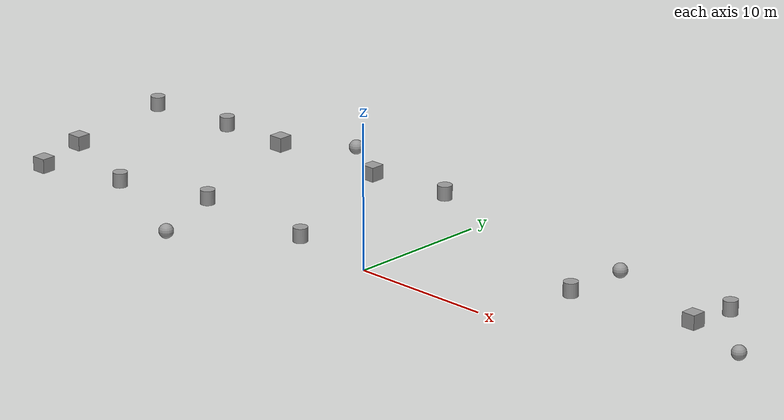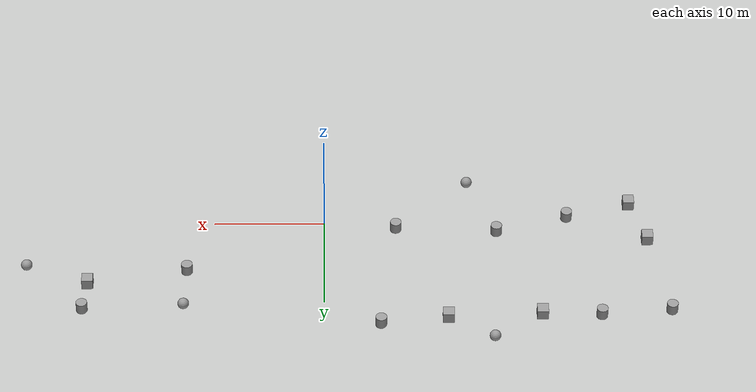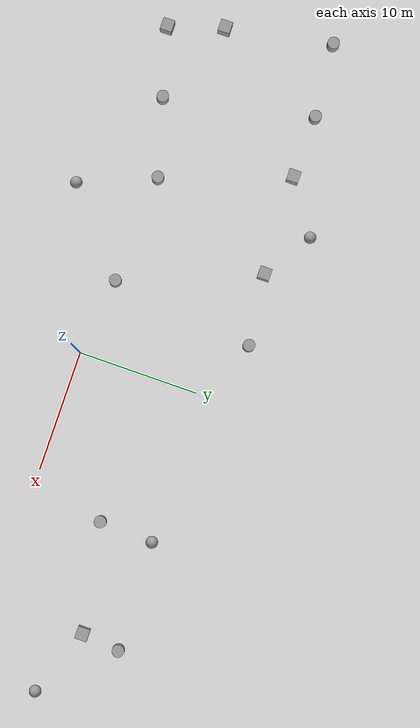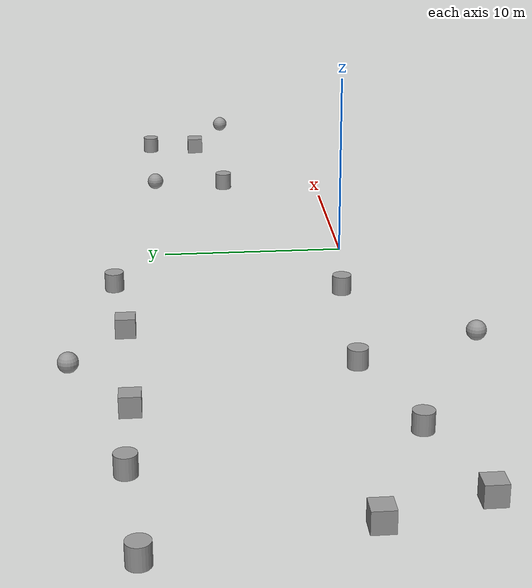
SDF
<?xml version='1.0'?>
<sdf version='1.7'>
  <model name='Untitled.world'>
    <link name='link_0'>
      <inertial>
        <mass>1</mass>
        <inertia>
          <ixx>0.145833</ixx>
          <ixy>0</ixy>
          <ixz>0</ixz>
          <iyy>0.145833</iyy>
          <iyz>0</iyz>
          <izz>0.125</izz>
        </inertia>
      </inertial>
      <pose>-30.8222 11.2468 0.5 0 -0 0</pose>
      <visual name='visual'>
        <pose>0 0 0 0 -0 0</pose>
        <geometry>
          <cylinder>
            <radius>0.5</radius>
            <length>1</length>
          </cylinder>
        </geometry>
        <material>
          <lighting>1</lighting>
          <script>
            <uri>file://media/materials/scripts/gazebo.material</uri>
            <name>Gazebo/Grey</name>
          </script>
          <shader type='pixel'/>
        </material>
        <transparency>0</transparency>
        <cast_shadows>1</cast_shadows>
      </visual>
      <collision name='collision'>
        <laser_retro>0</laser_retro>
        <max_contacts>10</max_contacts>
        <pose>0 0 0 0 -0 0</pose>
        <geometry>
          <cylinder>
            <radius>0.5</radius>
            <length>1</length>
          </cylinder>
        </geometry>
        <surface>
          <friction>
            <ode>
              <mu>1</mu>
              <mu2>1</mu2>
              <fdir1>0 0 0</fdir1>
              <slip1>0</slip1>
              <slip2>0</slip2>
            </ode>
            <torsional>
              <coefficient>1</coefficient>
              <patch_radius>0</patch_radius>
              <surface_radius>0</surface_radius>
              <use_patch_radius>1</use_patch_radius>
              <ode>
                <slip>0</slip>
              </ode>
            </torsional>
          </friction>
          <bounce>
            <restitution_coefficient>0</restitution_coefficient>
            <threshold>1e+06</threshold>
          </bounce>
          <contact>
            <collide_without_contact>0</collide_without_contact>
            <collide_without_contact_bitmask>1</collide_without_contact_bitmask>
            <collide_bitmask>1</collide_bitmask>
            <ode>
              <soft_cfm>0</soft_cfm>
              <soft_erp>0.2</soft_erp>
              <kp>1e+13</kp>
              <kd>1</kd>
              <max_vel>0.01</max_vel>
              <min_depth>0</min_depth>
            </ode>
            <bullet>
              <split_impulse>1</split_impulse>
              <split_impulse_penetration_threshold>-0.01</split_impulse_penetration_threshold>
              <soft_cfm>0</soft_cfm>
              <soft_erp>0.2</soft_erp>
              <kp>1e+13</kp>
              <kd>1</kd>
            </bullet>
          </contact>
        </surface>
      </collision>
    </link>
    <link name='link_10'>
      <inertial>
        <mass>1</mass>
        <inertia>
          <ixx>0.166667</ixx>
          <ixy>0</ixy>
          <ixz>0</ixz>
          <iyy>0.166667</iyy>
          <iyz>0</iyz>
          <izz>0.166667</izz>
        </inertia>
      </inertial>
      <pose>-29.2284 2.3885 0.5 0 -0 0</pose>
      <visual name='visual'>
        <pose>0 0 0 0 -0 0</pose>
        <geometry>
          <box>
            <size>1 1 1</size>
          </box>
        </geometry>
        <material>
          <lighting>1</lighting>
          <script>
            <uri>file://media/materials/scripts/gazebo.material</uri>
            <name>Gazebo/Grey</name>
          </script>
          <shader type='pixel'/>
        </material>
        <transparency>0</transparency>
        <cast_shadows>1</cast_shadows>
      </visual>
      <collision name='collision'>
        <laser_retro>0</laser_retro>
        <max_contacts>10</max_contacts>
        <pose>0 0 0 0 -0 0</pose>
        <geometry>
          <box>
            <size>1 1 1</size>
          </box>
        </geometry>
        <surface>
          <friction>
            <ode>
              <mu>1</mu>
              <mu2>1</mu2>
              <fdir1>0 0 0</fdir1>
              <slip1>0</slip1>
              <slip2>0</slip2>
            </ode>
            <torsional>
              <coefficient>1</coefficient>
              <patch_radius>0</patch_radius>
              <surface_radius>0</surface_radius>
              <use_patch_radius>1</use_patch_radius>
              <ode>
                <slip>0</slip>
              </ode>
            </torsional>
          </friction>
          <bounce>
            <restitution_coefficient>0</restitution_coefficient>
            <threshold>1e+06</threshold>
          </bounce>
          <contact>
            <collide_without_contact>0</collide_without_contact>
            <collide_without_contact_bitmask>1</collide_without_contact_bitmask>
            <collide_bitmask>1</collide_bitmask>
            <ode>
              <soft_cfm>0</soft_cfm>
              <soft_erp>0.2</soft_erp>
              <kp>1e+13</kp>
              <kd>1</kd>
              <max_vel>0.01</max_vel>
              <min_depth>0</min_depth>
            </ode>
            <bullet>
              <split_impulse>1</split_impulse>
              <split_impulse_penetration_threshold>-0.01</split_impulse_penetration_threshold>
              <soft_cfm>0</soft_cfm>
              <soft_erp>0.2</soft_erp>
              <kp>1e+13</kp>
              <kd>1</kd>
            </bullet>
          </contact>
        </surface>
      </collision>
    </link>
    <link name='link_11'>
      <inertial>
        <mass>1</mass>
        <inertia>
          <ixx>0.166667</ixx>
          <ixy>0</ixy>
          <ixz>0</ixz>
          <iyy>0.166667</iyy>
          <iyz>0</iyz>
          <izz>0.166667</izz>
        </inertia>
      </inertial>
      <pose>-19.3083 11.7055 0.5 0 -0 0</pose>
      <visual name='visual'>
        <pose>0 0 0 0 -0 0</pose>
        <geometry>
          <box>
            <size>1 1 1</size>
          </box>
        </geometry>
        <material>
          <lighting>1</lighting>
          <script>
            <uri>file://media/materials/scripts/gazebo.material</uri>
            <name>Gazebo/Grey</name>
          </script>
          <shader type='pixel'/>
        </material>
        <transparency>0</transparency>
        <cast_shadows>1</cast_shadows>
      </visual>
      <collision name='collision'>
        <laser_retro>0</laser_retro>
        <max_contacts>10</max_contacts>
        <pose>0 0 0 0 -0 0</pose>
        <geometry>
          <box>
            <size>1 1 1</size>
          </box>
        </geometry>
        <surface>
          <friction>
            <ode>
              <mu>1</mu>
              <mu2>1</mu2>
              <fdir1>0 0 0</fdir1>
              <slip1>0</slip1>
              <slip2>0</slip2>
            </ode>
            <torsional>
              <coefficient>1</coefficient>
              <patch_radius>0</patch_radius>
              <surface_radius>0</surface_radius>
              <use_patch_radius>1</use_patch_radius>
              <ode>
                <slip>0</slip>
              </ode>
            </torsional>
          </friction>
          <bounce>
            <restitution_coefficient>0</restitution_coefficient>
            <threshold>1e+06</threshold>
          </bounce>
          <contact>
            <collide_without_contact>0</collide_without_contact>
            <collide_without_contact_bitmask>1</collide_without_contact_bitmask>
            <collide_bitmask>1</collide_bitmask>
            <ode>
              <soft_cfm>0</soft_cfm>
              <soft_erp>0.2</soft_erp>
              <kp>1e+13</kp>
              <kd>1</kd>
              <max_vel>0.01</max_vel>
              <min_depth>0</min_depth>
            </ode>
            <bullet>
              <split_impulse>1</split_impulse>
              <split_impulse_penetration_threshold>-0.01</split_impulse_penetration_threshold>
              <soft_cfm>0</soft_cfm>
              <soft_erp>0.2</soft_erp>
              <kp>1e+13</kp>
              <kd>1</kd>
            </bullet>
          </contact>
        </surface>
      </collision>
    </link>
    <link name='link_12'>
      <inertial>
        <mass>1</mass>
        <inertia>
          <ixx>0.145833</ixx>
          <ixy>0</ixy>
          <ixz>0</ixz>
          <iyy>0.145833</iyy>
          <iyz>0</iyz>
          <izz>0.125</izz>
        </inertia>
      </inertial>
      <pose>-22.0556 -0.56703 0.5 0 -0 0</pose>
      <visual name='visual'>
        <pose>0 0 0 0 -0 0</pose>
        <geometry>
          <cylinder>
            <radius>0.5</radius>
            <length>1</length>
          </cylinder>
        </geometry>
        <material>
          <lighting>1</lighting>
          <script>
            <uri>file://media/materials/scripts/gazebo.material</uri>
            <name>Gazebo/Grey</name>
          </script>
          <shader type='pixel'/>
        </material>
        <transparency>0</transparency>
        <cast_shadows>1</cast_shadows>
      </visual>
      <collision name='collision'>
        <laser_retro>0</laser_retro>
        <max_contacts>10</max_contacts>
        <pose>0 0 0 0 -0 0</pose>
        <geometry>
          <cylinder>
            <radius>0.5</radius>
            <length>1</length>
          </cylinder>
        </geometry>
        <surface>
          <friction>
            <ode>
              <mu>1</mu>
              <mu2>1</mu2>
              <fdir1>0 0 0</fdir1>
              <slip1>0</slip1>
              <slip2>0</slip2>
            </ode>
            <torsional>
              <coefficient>1</coefficient>
              <patch_radius>0</patch_radius>
              <surface_radius>0</surface_radius>
              <use_patch_radius>1</use_patch_radius>
              <ode>
                <slip>0</slip>
              </ode>
            </torsional>
          </friction>
          <bounce>
            <restitution_coefficient>0</restitution_coefficient>
            <threshold>1e+06</threshold>
          </bounce>
          <contact>
            <collide_without_contact>0</collide_without_contact>
            <collide_without_contact_bitmask>1</collide_without_contact_bitmask>
            <collide_bitmask>1</collide_bitmask>
            <ode>
              <soft_cfm>0</soft_cfm>
              <soft_erp>0.2</soft_erp>
              <kp>1e+13</kp>
              <kd>1</kd>
              <max_vel>0.01</max_vel>
              <min_depth>0</min_depth>
            </ode>
            <bullet>
              <split_impulse>1</split_impulse>
              <split_impulse_penetration_threshold>-0.01</split_impulse_penetration_threshold>
              <soft_cfm>0</soft_cfm>
              <soft_erp>0.2</soft_erp>
              <kp>1e+13</kp>
              <kd>1</kd>
            </bullet>
          </contact>
        </surface>
      </collision>
    </link>
    <link name='link_13'>
      <inertial>
        <mass>1</mass>
        <inertia>
          <ixx>0.145833</ixx>
          <ixy>0</ixy>
          <ixz>0</ixz>
          <iyy>0.145833</iyy>
          <iyz>0</iyz>
          <izz>0.125</izz>
        </inertia>
      </inertial>
      <pose>-24.5776 11.8035 0.5 0 -0 0</pose>
      <visual name='visual'>
        <pose>0 0 0 0 -0 0</pose>
        <geometry>
          <cylinder>
            <radius>0.5</radius>
            <length>1</length>
          </cylinder>
        </geometry>
        <material>
          <lighting>1</lighting>
          <script>
            <uri>file://media/materials/scripts/gazebo.material</uri>
            <name>Gazebo/Grey</name>
          </script>
          <shader type='pixel'/>
        </material>
        <transparency>0</transparency>
        <cast_shadows>1</cast_shadows>
      </visual>
      <collision name='collision'>
        <laser_retro>0</laser_retro>
        <max_contacts>10</max_contacts>
        <pose>0 0 0 0 -0 0</pose>
        <geometry>
          <cylinder>
            <radius>0.5</radius>
            <length>1</length>
          </cylinder>
        </geometry>
        <surface>
          <friction>
            <ode>
              <mu>1</mu>
              <mu2>1</mu2>
              <fdir1>0 0 0</fdir1>
              <slip1>0</slip1>
              <slip2>0</slip2>
            </ode>
            <torsional>
              <coefficient>1</coefficient>
              <patch_radius>0</patch_radius>
              <surface_radius>0</surface_radius>
              <use_patch_radius>1</use_patch_radius>
              <ode>
                <slip>0</slip>
              </ode>
            </torsional>
          </friction>
          <bounce>
            <restitution_coefficient>0</restitution_coefficient>
            <threshold>1e+06</threshold>
          </bounce>
          <contact>
            <collide_without_contact>0</collide_without_contact>
            <collide_without_contact_bitmask>1</collide_without_contact_bitmask>
            <collide_bitmask>1</collide_bitmask>
            <ode>
              <soft_cfm>0</soft_cfm>
              <soft_erp>0.2</soft_erp>
              <kp>1e+13</kp>
              <kd>1</kd>
              <max_vel>0.01</max_vel>
              <min_depth>0</min_depth>
            </ode>
            <bullet>
              <split_impulse>1</split_impulse>
              <split_impulse_penetration_threshold>-0.01</split_impulse_penetration_threshold>
              <soft_cfm>0</soft_cfm>
              <soft_erp>0.2</soft_erp>
              <kp>1e+13</kp>
              <kd>1</kd>
            </bullet>
          </contact>
        </surface>
      </collision>
    </link>
    <link name='link_14'>
      <inertial>
        <mass>1</mass>
        <inertia>
          <ixx>0.145833</ixx>
          <ixy>0</ixy>
          <ixz>0</ixz>
          <iyy>0.145833</iyy>
          <iyz>0</iyz>
          <izz>0.125</izz>
        </inertia>
      </inertial>
      <pose>-15.6078 1.25382 0.5 0 -0 0</pose>
      <visual name='visual'>
        <pose>0 0 0 0 -0 0</pose>
        <geometry>
          <cylinder>
            <radius>0.5</radius>
            <length>1</length>
          </cylinder>
        </geometry>
        <material>
          <lighting>1</lighting>
          <script>
            <uri>file://media/materials/scripts/gazebo.material</uri>
            <name>Gazebo/Grey</name>
          </script>
          <shader type='pixel'/>
        </material>
        <transparency>0</transparency>
        <cast_shadows>1</cast_shadows>
      </visual>
      <collision name='collision'>
        <laser_retro>0</laser_retro>
        <max_contacts>10</max_contacts>
        <pose>0 0 0 0 -0 0</pose>
        <geometry>
          <cylinder>
            <radius>0.5</radius>
            <length>1</length>
          </cylinder>
        </geometry>
        <surface>
          <friction>
            <ode>
              <mu>1</mu>
              <mu2>1</mu2>
              <fdir1>0 0 0</fdir1>
              <slip1>0</slip1>
              <slip2>0</slip2>
            </ode>
            <torsional>
              <coefficient>1</coefficient>
              <patch_radius>0</patch_radius>
              <surface_radius>0</surface_radius>
              <use_patch_radius>1</use_patch_radius>
              <ode>
                <slip>0</slip>
              </ode>
            </torsional>
          </friction>
          <bounce>
            <restitution_coefficient>0</restitution_coefficient>
            <threshold>1e+06</threshold>
          </bounce>
          <contact>
            <collide_without_contact>0</collide_without_contact>
            <collide_without_contact_bitmask>1</collide_without_contact_bitmask>
            <collide_bitmask>1</collide_bitmask>
            <ode>
              <soft_cfm>0</soft_cfm>
              <soft_erp>0.2</soft_erp>
              <kp>1e+13</kp>
              <kd>1</kd>
              <max_vel>0.01</max_vel>
              <min_depth>0</min_depth>
            </ode>
            <bullet>
              <split_impulse>1</split_impulse>
              <split_impulse_penetration_threshold>-0.01</split_impulse_penetration_threshold>
              <soft_cfm>0</soft_cfm>
              <soft_erp>0.2</soft_erp>
              <kp>1e+13</kp>
              <kd>1</kd>
            </bullet>
          </contact>
        </surface>
      </collision>
    </link>
    <link name='link_15'>
      <inertial>
        <mass>1</mass>
        <inertia>
          <ixx>0.1</ixx>
          <ixy>0</ixy>
          <ixz>0</ixz>
          <iyy>0.1</iyy>
          <iyz>0</iyz>
          <izz>0.1</izz>
        </inertia>
      </inertial>
      <pose>-15.0012 14.6132 0.5 0 -0 0</pose>
      <visual name='visual'>
        <pose>0 0 0 0 -0 0</pose>
        <geometry>
          <sphere>
            <radius>0.5</radius>
          </sphere>
        </geometry>
        <material>
          <lighting>1</lighting>
          <script>
            <uri>file://media/materials/scripts/gazebo.material</uri>
            <name>Gazebo/Grey</name>
          </script>
          <shader type='pixel'/>
        </material>
        <transparency>0</transparency>
        <cast_shadows>1</cast_shadows>
      </visual>
      <collision name='collision'>
        <laser_retro>0</laser_retro>
        <max_contacts>10</max_contacts>
        <pose>0 0 0 0 -0 0</pose>
        <geometry>
          <sphere>
            <radius>0.5</radius>
          </sphere>
        </geometry>
        <surface>
          <friction>
            <ode>
              <mu>1</mu>
              <mu2>1</mu2>
              <fdir1>0 0 0</fdir1>
              <slip1>0</slip1>
              <slip2>0</slip2>
            </ode>
            <torsional>
              <coefficient>1</coefficient>
              <patch_radius>0</patch_radius>
              <surface_radius>0</surface_radius>
              <use_patch_radius>1</use_patch_radius>
              <ode>
                <slip>0</slip>
              </ode>
            </torsional>
          </friction>
          <bounce>
            <restitution_coefficient>0</restitution_coefficient>
            <threshold>1e+06</threshold>
          </bounce>
          <contact>
            <collide_without_contact>0</collide_without_contact>
            <collide_without_contact_bitmask>1</collide_without_contact_bitmask>
            <collide_bitmask>1</collide_bitmask>
            <ode>
              <soft_cfm>0</soft_cfm>
              <soft_erp>0.2</soft_erp>
              <kp>1e+13</kp>
              <kd>1</kd>
              <max_vel>0.01</max_vel>
              <min_depth>0</min_depth>
            </ode>
            <bullet>
              <split_impulse>1</split_impulse>
              <split_impulse_penetration_threshold>-0.01</split_impulse_penetration_threshold>
              <soft_cfm>0</soft_cfm>
              <soft_erp>0.2</soft_erp>
              <kp>1e+13</kp>
              <kd>1</kd>
            </bullet>
          </contact>
        </surface>
      </collision>
    </link>
    <link name='link_16'>
      <inertial>
        <mass>1</mass>
        <inertia>
          <ixx>0.166667</ixx>
          <ixy>0</ixy>
          <ixz>0</ixz>
          <iyy>0.166667</iyy>
          <iyz>0</iyz>
          <izz>0.166667</izz>
        </inertia>
      </inertial>
      <pose>-10.9734 12.0567 0.5 0 -0 0</pose>
      <visual name='visual'>
        <pose>0 0 0 0 -0 0</pose>
        <geometry>
          <box>
            <size>1 1 1</size>
          </box>
        </geometry>
        <material>
          <lighting>1</lighting>
          <script>
            <uri>file://media/materials/scripts/gazebo.material</uri>
            <name>Gazebo/Grey</name>
          </script>
          <shader type='pixel'/>
        </material>
        <transparency>0</transparency>
        <cast_shadows>1</cast_shadows>
      </visual>
      <collision name='collision'>
        <laser_retro>0</laser_retro>
        <max_contacts>10</max_contacts>
        <pose>0 0 0 0 -0 0</pose>
        <geometry>
          <box>
            <size>1 1 1</size>
          </box>
        </geometry>
        <surface>
          <friction>
            <ode>
              <mu>1</mu>
              <mu2>1</mu2>
              <fdir1>0 0 0</fdir1>
              <slip1>0</slip1>
              <slip2>0</slip2>
            </ode>
            <torsional>
              <coefficient>1</coefficient>
              <patch_radius>0</patch_radius>
              <surface_radius>0</surface_radius>
              <use_patch_radius>1</use_patch_radius>
              <ode>
                <slip>0</slip>
              </ode>
            </torsional>
          </friction>
          <bounce>
            <restitution_coefficient>0</restitution_coefficient>
            <threshold>1e+06</threshold>
          </bounce>
          <contact>
            <collide_without_contact>0</collide_without_contact>
            <collide_without_contact_bitmask>1</collide_without_contact_bitmask>
            <collide_bitmask>1</collide_bitmask>
            <ode>
              <soft_cfm>0</soft_cfm>
              <soft_erp>0.2</soft_erp>
              <kp>1e+13</kp>
              <kd>1</kd>
              <max_vel>0.01</max_vel>
              <min_depth>0</min_depth>
            </ode>
            <bullet>
              <split_impulse>1</split_impulse>
              <split_impulse_penetration_threshold>-0.01</split_impulse_penetration_threshold>
              <soft_cfm>0</soft_cfm>
              <soft_erp>0.2</soft_erp>
              <kp>1e+13</kp>
              <kd>1</kd>
            </bullet>
          </contact>
        </surface>
      </collision>
    </link>
    <link name='link_17'>
      <inertial>
        <mass>1</mass>
        <inertia>
          <ixx>0.145833</ixx>
          <ixy>0</ixy>
          <ixz>0</ixz>
          <iyy>0.145833</iyy>
          <iyz>0</iyz>
          <izz>0.125</izz>
        </inertia>
      </inertial>
      <pose>-6.48222 0.763266 0.5 0 -0 0</pose>
      <visual name='visual'>
        <pose>0 0 0 0 -0 0</pose>
        <geometry>
          <cylinder>
            <radius>0.5</radius>
            <length>1</length>
          </cylinder>
        </geometry>
        <material>
          <lighting>1</lighting>
          <script>
            <uri>file://media/materials/scripts/gazebo.material</uri>
            <name>Gazebo/Grey</name>
          </script>
          <shader type='pixel'/>
        </material>
        <transparency>0</transparency>
        <cast_shadows>1</cast_shadows>
      </visual>
      <collision name='collision'>
        <laser_retro>0</laser_retro>
        <max_contacts>10</max_contacts>
        <pose>0 0 0 0 -0 0</pose>
        <geometry>
          <cylinder>
            <radius>0.5</radius>
            <length>1</length>
          </cylinder>
        </geometry>
        <surface>
          <friction>
            <ode>
              <mu>1</mu>
              <mu2>1</mu2>
              <fdir1>0 0 0</fdir1>
              <slip1>0</slip1>
              <slip2>0</slip2>
            </ode>
            <torsional>
              <coefficient>1</coefficient>
              <patch_radius>0</patch_radius>
              <surface_radius>0</surface_radius>
              <use_patch_radius>1</use_patch_radius>
              <ode>
                <slip>0</slip>
              </ode>
            </torsional>
          </friction>
          <bounce>
            <restitution_coefficient>0</restitution_coefficient>
            <threshold>1e+06</threshold>
          </bounce>
          <contact>
            <collide_without_contact>0</collide_without_contact>
            <collide_without_contact_bitmask>1</collide_without_contact_bitmask>
            <collide_bitmask>1</collide_bitmask>
            <ode>
              <soft_cfm>0</soft_cfm>
              <soft_erp>0.2</soft_erp>
              <kp>1e+13</kp>
              <kd>1</kd>
              <max_vel>0.01</max_vel>
              <min_depth>0</min_depth>
            </ode>
            <bullet>
              <split_impulse>1</split_impulse>
              <split_impulse_penetration_threshold>-0.01</split_impulse_penetration_threshold>
              <soft_cfm>0</soft_cfm>
              <soft_erp>0.2</soft_erp>
              <kp>1e+13</kp>
              <kd>1</kd>
            </bullet>
          </contact>
        </surface>
      </collision>
    </link>
    <link name='link_18'>
      <inertial>
        <mass>1</mass>
        <inertia>
          <ixx>0.145833</ixx>
          <ixy>0</ixy>
          <ixz>0</ixz>
          <iyy>0.145833</iyy>
          <iyz>0</iyz>
          <izz>0.125</izz>
        </inertia>
      </inertial>
      <pose>-5.0022 12.7484 0.5 0 -0 0</pose>
      <visual name='visual'>
        <pose>0 0 0 0 -0 0</pose>
        <geometry>
          <cylinder>
            <radius>0.5</radius>
            <length>1</length>
          </cylinder>
        </geometry>
        <material>
          <lighting>1</lighting>
          <script>
            <uri>file://media/materials/scripts/gazebo.material</uri>
            <name>Gazebo/Grey</name>
          </script>
          <shader type='pixel'/>
        </material>
        <transparency>0</transparency>
        <cast_shadows>1</cast_shadows>
      </visual>
      <collision name='collision'>
        <laser_retro>0</laser_retro>
        <max_contacts>10</max_contacts>
        <pose>0 0 0 0 -0 0</pose>
        <geometry>
          <cylinder>
            <radius>0.5</radius>
            <length>1</length>
          </cylinder>
        </geometry>
        <surface>
          <friction>
            <ode>
              <mu>1</mu>
              <mu2>1</mu2>
              <fdir1>0 0 0</fdir1>
              <slip1>0</slip1>
              <slip2>0</slip2>
            </ode>
            <torsional>
              <coefficient>1</coefficient>
              <patch_radius>0</patch_radius>
              <surface_radius>0</surface_radius>
              <use_patch_radius>1</use_patch_radius>
              <ode>
                <slip>0</slip>
              </ode>
            </torsional>
          </friction>
          <bounce>
            <restitution_coefficient>0</restitution_coefficient>
            <threshold>1e+06</threshold>
          </bounce>
          <contact>
            <collide_without_contact>0</collide_without_contact>
            <collide_without_contact_bitmask>1</collide_without_contact_bitmask>
            <collide_bitmask>1</collide_bitmask>
            <ode>
              <soft_cfm>0</soft_cfm>
              <soft_erp>0.2</soft_erp>
              <kp>1e+13</kp>
              <kd>1</kd>
              <max_vel>0.01</max_vel>
              <min_depth>0</min_depth>
            </ode>
            <bullet>
              <split_impulse>1</split_impulse>
              <split_impulse_penetration_threshold>-0.01</split_impulse_penetration_threshold>
              <soft_cfm>0</soft_cfm>
              <soft_erp>0.2</soft_erp>
              <kp>1e+13</kp>
              <kd>1</kd>
            </bullet>
          </contact>
        </surface>
      </collision>
    </link>
    <link name='link_19'>
      <inertial>
        <mass>1</mass>
        <inertia>
          <ixx>0.1</ixx>
          <ixy>0</ixy>
          <ixz>0</ixz>
          <iyy>0.1</iyy>
          <iyz>0</iyz>
          <izz>0.1</izz>
        </inertia>
      </inertial>
      <pose>-13.0755 -4.93228 0.5 0 -0 0</pose>
      <visual name='visual'>
        <pose>0 0 0 0 -0 0</pose>
        <geometry>
          <sphere>
            <radius>0.5</radius>
          </sphere>
        </geometry>
        <material>
          <lighting>1</lighting>
          <script>
            <uri>file://media/materials/scripts/gazebo.material</uri>
            <name>Gazebo/Grey</name>
          </script>
          <shader type='pixel'/>
        </material>
        <transparency>0</transparency>
        <cast_shadows>1</cast_shadows>
      </visual>
      <collision name='collision'>
        <laser_retro>0</laser_retro>
        <max_contacts>10</max_contacts>
        <pose>0 0 0 0 -0 0</pose>
        <geometry>
          <sphere>
            <radius>0.5</radius>
          </sphere>
        </geometry>
        <surface>
          <friction>
            <ode>
              <mu>1</mu>
              <mu2>1</mu2>
              <fdir1>0 0 0</fdir1>
              <slip1>0</slip1>
              <slip2>0</slip2>
            </ode>
            <torsional>
              <coefficient>1</coefficient>
              <patch_radius>0</patch_radius>
              <surface_radius>0</surface_radius>
              <use_patch_radius>1</use_patch_radius>
              <ode>
                <slip>0</slip>
              </ode>
            </torsional>
          </friction>
          <bounce>
            <restitution_coefficient>0</restitution_coefficient>
            <threshold>1e+06</threshold>
          </bounce>
          <contact>
            <collide_without_contact>0</collide_without_contact>
            <collide_without_contact_bitmask>1</collide_without_contact_bitmask>
            <collide_bitmask>1</collide_bitmask>
            <ode>
              <soft_cfm>0</soft_cfm>
              <soft_erp>0.2</soft_erp>
              <kp>1e+13</kp>
              <kd>1</kd>
              <max_vel>0.01</max_vel>
              <min_depth>0</min_depth>
            </ode>
            <bullet>
              <split_impulse>1</split_impulse>
              <split_impulse_penetration_threshold>-0.01</split_impulse_penetration_threshold>
              <soft_cfm>0</soft_cfm>
              <soft_erp>0.2</soft_erp>
              <kp>1e+13</kp>
              <kd>1</kd>
            </bullet>
          </contact>
        </surface>
      </collision>
    </link>
    <link name='link_20'>
      <inertial>
        <mass>1</mass>
        <inertia>
          <ixx>0.166667</ixx>
          <ixy>0</ixy>
          <ixz>0</ixz>
          <iyy>0.166667</iyy>
          <iyz>0</iyz>
          <izz>0.166667</izz>
        </inertia>
      </inertial>
      <pose>-27.8066 -2.14153 0.5 0 -0 0</pose>
      <visual name='visual'>
        <pose>0 0 0 0 -0 0</pose>
        <geometry>
          <box>
            <size>1 1 1</size>
          </box>
        </geometry>
        <material>
          <lighting>1</lighting>
          <script>
            <uri>file://media/materials/scripts/gazebo.material</uri>
            <name>Gazebo/Grey</name>
          </script>
          <shader type='pixel'/>
        </material>
        <transparency>0</transparency>
        <cast_shadows>1</cast_shadows>
      </visual>
      <collision name='collision'>
        <laser_retro>0</laser_retro>
        <max_contacts>10</max_contacts>
        <pose>0 0 0 0 -0 0</pose>
        <geometry>
          <box>
            <size>1 1 1</size>
          </box>
        </geometry>
        <surface>
          <friction>
            <ode>
              <mu>1</mu>
              <mu2>1</mu2>
              <fdir1>0 0 0</fdir1>
              <slip1>0</slip1>
              <slip2>0</slip2>
            </ode>
            <torsional>
              <coefficient>1</coefficient>
              <patch_radius>0</patch_radius>
              <surface_radius>0</surface_radius>
              <use_patch_radius>1</use_patch_radius>
              <ode>
                <slip>0</slip>
              </ode>
            </torsional>
          </friction>
          <bounce>
            <restitution_coefficient>0</restitution_coefficient>
            <threshold>1e+06</threshold>
          </bounce>
          <contact>
            <collide_without_contact>0</collide_without_contact>
            <collide_without_contact_bitmask>1</collide_without_contact_bitmask>
            <collide_bitmask>1</collide_bitmask>
            <ode>
              <soft_cfm>0</soft_cfm>
              <soft_erp>0.2</soft_erp>
              <kp>1e+13</kp>
              <kd>1</kd>
              <max_vel>0.01</max_vel>
              <min_depth>0</min_depth>
            </ode>
            <bullet>
              <split_impulse>1</split_impulse>
              <split_impulse_penetration_threshold>-0.01</split_impulse_penetration_threshold>
              <soft_cfm>0</soft_cfm>
              <soft_erp>0.2</soft_erp>
              <kp>1e+13</kp>
              <kd>1</kd>
            </bullet>
          </contact>
        </surface>
      </collision>
    </link>
    <link name='link_5'>
      <inertial>
        <mass>1</mass>
        <inertia>
          <ixx>0.145833</ixx>
          <ixy>0</ixy>
          <ixz>0</ixz>
          <iyy>0.145833</iyy>
          <iyz>0</iyz>
          <izz>0.125</izz>
        </inertia>
      </inertial>
      <pose>12.3377 6.06515 0.5 0 -0 0</pose>
      <visual name='visual'>
        <pose>0 0 0 0 -0 0</pose>
        <geometry>
          <cylinder>
            <radius>0.5</radius>
            <length>1</length>
          </cylinder>
        </geometry>
        <material>
          <lighting>1</lighting>
          <script>
            <uri>file://media/materials/scripts/gazebo.material</uri>
            <name>Gazebo/Grey</name>
          </script>
          <shader type='pixel'/>
        </material>
        <transparency>0</transparency>
        <cast_shadows>1</cast_shadows>
      </visual>
      <collision name='collision'>
        <laser_retro>0</laser_retro>
        <max_contacts>10</max_contacts>
        <pose>0 0 0 0 -0 0</pose>
        <geometry>
          <cylinder>
            <radius>0.5</radius>
            <length>1</length>
          </cylinder>
        </geometry>
        <surface>
          <friction>
            <ode>
              <mu>1</mu>
              <mu2>1</mu2>
              <fdir1>0 0 0</fdir1>
              <slip1>0</slip1>
              <slip2>0</slip2>
            </ode>
            <torsional>
              <coefficient>1</coefficient>
              <patch_radius>0</patch_radius>
              <surface_radius>0</surface_radius>
              <use_patch_radius>1</use_patch_radius>
              <ode>
                <slip>0</slip>
              </ode>
            </torsional>
          </friction>
          <bounce>
            <restitution_coefficient>0</restitution_coefficient>
            <threshold>1e+06</threshold>
          </bounce>
          <contact>
            <collide_without_contact>0</collide_without_contact>
            <collide_without_contact_bitmask>1</collide_without_contact_bitmask>
            <collide_bitmask>1</collide_bitmask>
            <ode>
              <soft_cfm>0</soft_cfm>
              <soft_erp>0.2</soft_erp>
              <kp>1e+13</kp>
              <kd>1</kd>
              <max_vel>0.01</max_vel>
              <min_depth>0</min_depth>
            </ode>
            <bullet>
              <split_impulse>1</split_impulse>
              <split_impulse_penetration_threshold>-0.01</split_impulse_penetration_threshold>
              <soft_cfm>0</soft_cfm>
              <soft_erp>0.2</soft_erp>
              <kp>1e+13</kp>
              <kd>1</kd>
            </bullet>
          </contact>
        </surface>
      </collision>
    </link>
    <link name='link_6'>
      <inertial>
        <mass>1</mass>
        <inertia>
          <ixx>0.1</ixx>
          <ixy>0</ixy>
          <ixz>0</ixz>
          <iyy>0.1</iyy>
          <iyz>0</iyz>
          <izz>0.1</izz>
        </inertia>
      </inertial>
      <pose>12.5371 10.5189 0.5 0 -0 0</pose>
      <visual name='visual'>
        <pose>0 0 0 0 -0 0</pose>
        <geometry>
          <sphere>
            <radius>0.5</radius>
          </sphere>
        </geometry>
        <material>
          <lighting>1</lighting>
          <script>
            <uri>file://media/materials/scripts/gazebo.material</uri>
            <name>Gazebo/Grey</name>
          </script>
          <shader type='pixel'/>
        </material>
        <transparency>0</transparency>
        <cast_shadows>1</cast_shadows>
      </visual>
      <collision name='collision'>
        <laser_retro>0</laser_retro>
        <max_contacts>10</max_contacts>
        <pose>0 0 0 0 -0 0</pose>
        <geometry>
          <sphere>
            <radius>0.5</radius>
          </sphere>
        </geometry>
        <surface>
          <friction>
            <ode>
              <mu>1</mu>
              <mu2>1</mu2>
              <fdir1>0 0 0</fdir1>
              <slip1>0</slip1>
              <slip2>0</slip2>
            </ode>
            <torsional>
              <coefficient>1</coefficient>
              <patch_radius>0</patch_radius>
              <surface_radius>0</surface_radius>
              <use_patch_radius>1</use_patch_radius>
              <ode>
                <slip>0</slip>
              </ode>
            </torsional>
          </friction>
          <bounce>
            <restitution_coefficient>0</restitution_coefficient>
            <threshold>1e+06</threshold>
          </bounce>
          <contact>
            <collide_without_contact>0</collide_without_contact>
            <collide_without_contact_bitmask>1</collide_without_contact_bitmask>
            <collide_bitmask>1</collide_bitmask>
            <ode>
              <soft_cfm>0</soft_cfm>
              <soft_erp>0.2</soft_erp>
              <kp>1e+13</kp>
              <kd>1</kd>
              <max_vel>0.01</max_vel>
              <min_depth>0</min_depth>
            </ode>
            <bullet>
              <split_impulse>1</split_impulse>
              <split_impulse_penetration_threshold>-0.01</split_impulse_penetration_threshold>
              <soft_cfm>0</soft_cfm>
              <soft_erp>0.2</soft_erp>
              <kp>1e+13</kp>
              <kd>1</kd>
            </bullet>
          </contact>
        </surface>
      </collision>
    </link>
    <link name='link_7'>
      <inertial>
        <mass>1</mass>
        <inertia>
          <ixx>0.166667</ixx>
          <ixy>0</ixy>
          <ixz>0</ixz>
          <iyy>0.166667</iyy>
          <iyz>0</iyz>
          <izz>0.166667</izz>
        </inertia>
      </inertial>
      <pose>21.1855 7.66598 0.5 0 -0 0</pose>
      <visual name='visual'>
        <pose>0 0 0 0 -0 0</pose>
        <geometry>
          <box>
            <size>1 1 1</size>
          </box>
        </geometry>
        <material>
          <lighting>1</lighting>
          <script>
            <uri>file://media/materials/scripts/gazebo.material</uri>
            <name>Gazebo/Grey</name>
          </script>
          <shader type='pixel'/>
        </material>
        <transparency>0</transparency>
        <cast_shadows>1</cast_shadows>
      </visual>
      <collision name='collision'>
        <laser_retro>0</laser_retro>
        <max_contacts>10</max_contacts>
        <pose>0 0 0 0 -0 0</pose>
        <geometry>
          <box>
            <size>1 1 1</size>
          </box>
        </geometry>
        <surface>
          <friction>
            <ode>
              <mu>1</mu>
              <mu2>1</mu2>
              <fdir1>0 0 0</fdir1>
              <slip1>0</slip1>
              <slip2>0</slip2>
            </ode>
            <torsional>
              <coefficient>1</coefficient>
              <patch_radius>0</patch_radius>
              <surface_radius>0</surface_radius>
              <use_patch_radius>1</use_patch_radius>
              <ode>
                <slip>0</slip>
              </ode>
            </torsional>
          </friction>
          <bounce>
            <restitution_coefficient>0</restitution_coefficient>
            <threshold>1e+06</threshold>
          </bounce>
          <contact>
            <collide_without_contact>0</collide_without_contact>
            <collide_without_contact_bitmask>1</collide_without_contact_bitmask>
            <collide_bitmask>1</collide_bitmask>
            <ode>
              <soft_cfm>0</soft_cfm>
              <soft_erp>0.2</soft_erp>
              <kp>1e+13</kp>
              <kd>1</kd>
              <max_vel>0.01</max_vel>
              <min_depth>0</min_depth>
            </ode>
            <bullet>
              <split_impulse>1</split_impulse>
              <split_impulse_penetration_threshold>-0.01</split_impulse_penetration_threshold>
              <soft_cfm>0</soft_cfm>
              <soft_erp>0.2</soft_erp>
              <kp>1e+13</kp>
              <kd>1</kd>
            </bullet>
          </contact>
        </surface>
      </collision>
    </link>
    <link name='link_8'>
      <inertial>
        <mass>1</mass>
        <inertia>
          <ixx>0.145833</ixx>
          <ixy>0</ixy>
          <ixz>0</ixz>
          <iyy>0.145833</iyy>
          <iyz>0</iyz>
          <izz>0.125</izz>
        </inertia>
      </inertial>
      <pose>21.5305 10.8093 0.5 0 -0 0</pose>
      <visual name='visual'>
        <pose>0 0 0 0 -0 0</pose>
        <geometry>
          <cylinder>
            <radius>0.5</radius>
            <length>1</length>
          </cylinder>
        </geometry>
        <material>
          <lighting>1</lighting>
          <script>
            <uri>file://media/materials/scripts/gazebo.material</uri>
            <name>Gazebo/Grey</name>
          </script>
          <shader type='pixel'/>
        </material>
        <transparency>0</transparency>
        <cast_shadows>1</cast_shadows>
      </visual>
      <collision name='collision'>
        <laser_retro>0</laser_retro>
        <max_contacts>10</max_contacts>
        <pose>0 0 0 0 -0 0</pose>
        <geometry>
          <cylinder>
            <radius>0.5</radius>
            <length>1</length>
          </cylinder>
        </geometry>
        <surface>
          <friction>
            <ode>
              <mu>1</mu>
              <mu2>1</mu2>
              <fdir1>0 0 0</fdir1>
              <slip1>0</slip1>
              <slip2>0</slip2>
            </ode>
            <torsional>
              <coefficient>1</coefficient>
              <patch_radius>0</patch_radius>
              <surface_radius>0</surface_radius>
              <use_patch_radius>1</use_patch_radius>
              <ode>
                <slip>0</slip>
              </ode>
            </torsional>
          </friction>
          <bounce>
            <restitution_coefficient>0</restitution_coefficient>
            <threshold>1e+06</threshold>
          </bounce>
          <contact>
            <collide_without_contact>0</collide_without_contact>
            <collide_without_contact_bitmask>1</collide_without_contact_bitmask>
            <collide_bitmask>1</collide_bitmask>
            <ode>
              <soft_cfm>0</soft_cfm>
              <soft_erp>0.2</soft_erp>
              <kp>1e+13</kp>
              <kd>1</kd>
              <max_vel>0.01</max_vel>
              <min_depth>0</min_depth>
            </ode>
            <bullet>
              <split_impulse>1</split_impulse>
              <split_impulse_penetration_threshold>-0.01</split_impulse_penetration_threshold>
              <soft_cfm>0</soft_cfm>
              <soft_erp>0.2</soft_erp>
              <kp>1e+13</kp>
              <kd>1</kd>
            </bullet>
          </contact>
        </surface>
      </collision>
    </link>
    <link name='link_9'>
      <inertial>
        <mass>1</mass>
        <inertia>
          <ixx>0.1</ixx>
          <ixy>0</ixy>
          <ixz>0</ixz>
          <iyy>0.1</iyy>
          <iyz>0</iyz>
          <izz>0.1</izz>
        </inertia>
      </inertial>
      <pose>26.7336 5.59463 0.5 0 -0 0</pose>
      <visual name='visual'>
        <pose>0 0 0 0 -0 0</pose>
        <geometry>
          <sphere>
            <radius>0.5</radius>
          </sphere>
        </geometry>
        <material>
          <lighting>1</lighting>
          <script>
            <uri>file://media/materials/scripts/gazebo.material</uri>
            <name>Gazebo/Grey</name>
          </script>
          <shader type='pixel'/>
        </material>
        <transparency>0</transparency>
        <cast_shadows>1</cast_shadows>
      </visual>
      <collision name='collision'>
        <laser_retro>0</laser_retro>
        <max_contacts>10</max_contacts>
        <pose>0 0 0 0 -0 0</pose>
        <geometry>
          <sphere>
            <radius>0.5</radius>
          </sphere>
        </geometry>
        <surface>
          <friction>
            <ode>
              <mu>1</mu>
              <mu2>1</mu2>
              <fdir1>0 0 0</fdir1>
              <slip1>0</slip1>
              <slip2>0</slip2>
            </ode>
            <torsional>
              <coefficient>1</coefficient>
              <patch_radius>0</patch_radius>
              <surface_radius>0</surface_radius>
              <use_patch_radius>1</use_patch_radius>
              <ode>
                <slip>0</slip>
              </ode>
            </torsional>
          </friction>
          <bounce>
            <restitution_coefficient>0</restitution_coefficient>
            <threshold>1e+06</threshold>
          </bounce>
          <contact>
            <collide_without_contact>0</collide_without_contact>
            <collide_without_contact_bitmask>1</collide_without_contact_bitmask>
            <collide_bitmask>1</collide_bitmask>
            <ode>
              <soft_cfm>0</soft_cfm>
              <soft_erp>0.2</soft_erp>
              <kp>1e+13</kp>
              <kd>1</kd>
              <max_vel>0.01</max_vel>
              <min_depth>0</min_depth>
            </ode>
            <bullet>
              <split_impulse>1</split_impulse>
              <split_impulse_penetration_threshold>-0.01</split_impulse_penetration_threshold>
              <soft_cfm>0</soft_cfm>
              <soft_erp>0.2</soft_erp>
              <kp>1e+13</kp>
              <kd>1</kd>
            </bullet>
          </contact>
        </surface>
      </collision>
    </link>
    <static>0</static>
    <allow_auto_disable>1</allow_auto_disable>
  </model>
</sdf>
